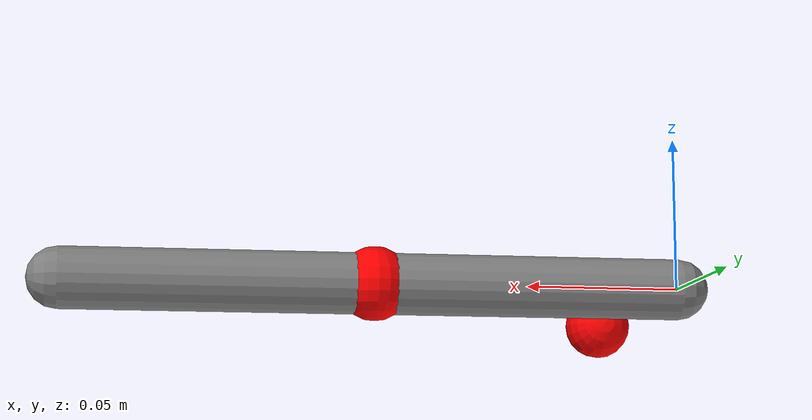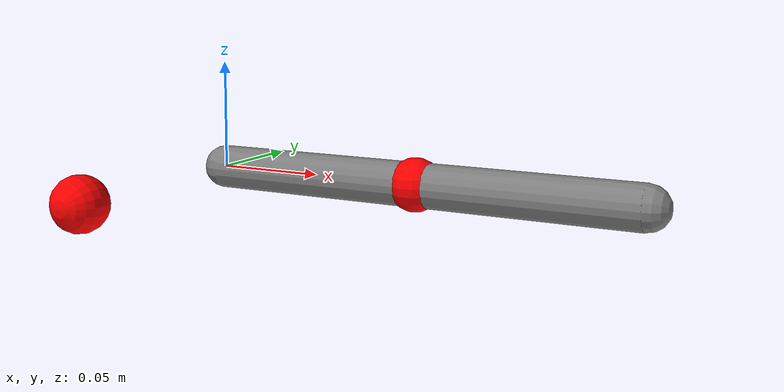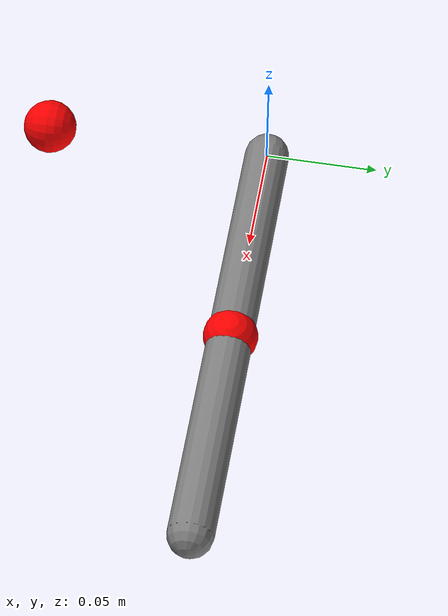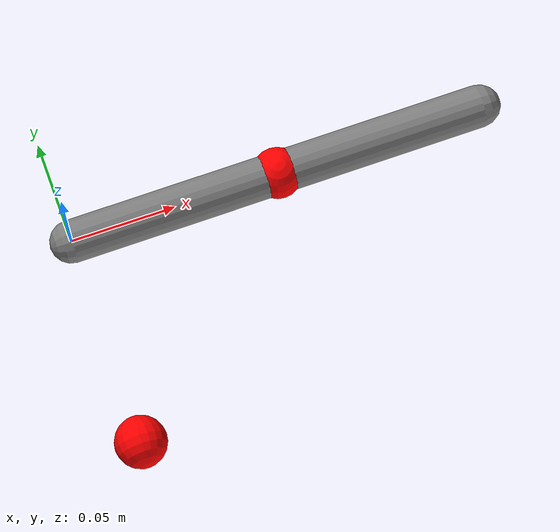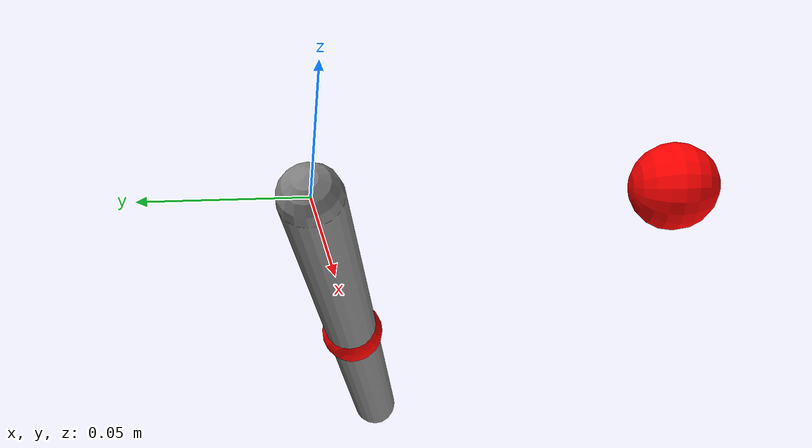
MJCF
<mujoco>
  <worldbody>
    <site name="slidersite" pos="0 -.1 0" zaxis="0 1 0" size=".012" rgba="1 0 0 1"/>
    <body>
      <joint damping=".1"/>
      <geom type="capsule" size=".01" fromto="0 0 0 .2 0 0"/>
      <site name="cranksite" pos=".1 0 0" size=".012" rgba="1 0 0 1"/>
    </body>
  </worldbody>

  <actuator>
    <position name="slider-crank" cranksite="cranksite" slidersite="slidersite" cranklength=".11"
      ctrllimited="true" ctrlrange="-.1 .1" kp="3"/>
  </actuator>
</mujoco>
